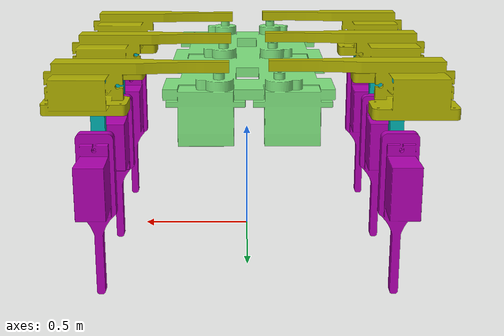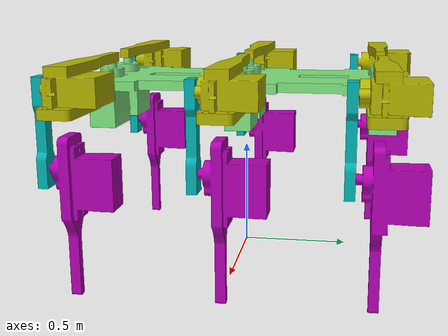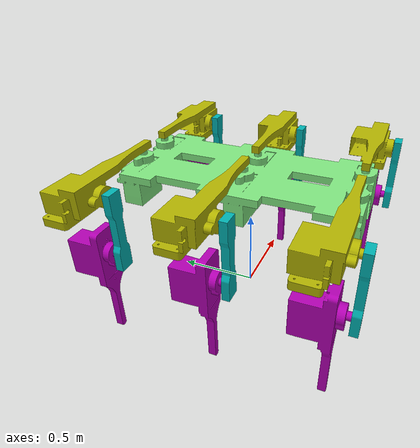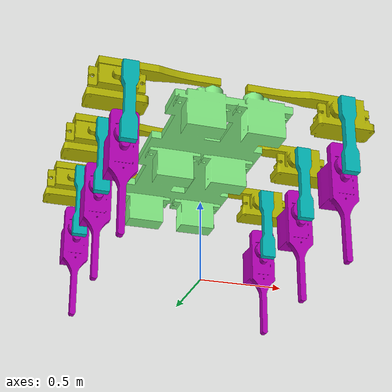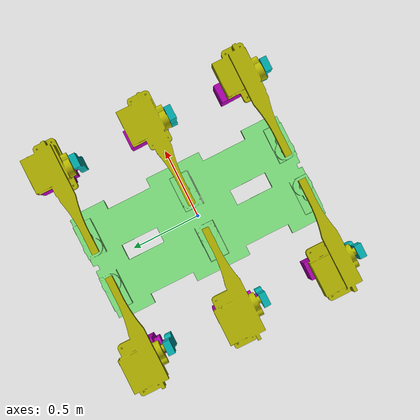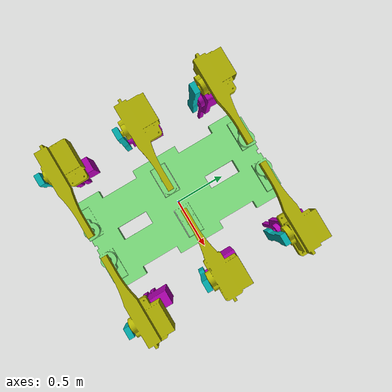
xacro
<?xml version="1.0"?>
<robot xmlns:xacro="http://ros.org/wiki/xacro" name="aranha">

<!--################### Declaração de váriaveis e constantes ################-->
<xacro:property name="pi" value="3.1415926535897931" />
<xacro:property name="altura_base" value="0.8" />
<!-- Distancia das peças -->
<xacro:property name="dist_coxa_x_d" value="0.5" />
<xacro:property name="dist_coxa_x_e" value="-0.5" />
<xacro:property name="dist_femurj_x_d" value="0.52" />
<xacro:property name="dist_femurj_x_e" value="-0.52" />

<!-- Joint properties -->
<xacro:property name="joint_lower_limit" value="-${pi/2}" />
<xacro:property name="joint_upper_limit" value="${pi/2}" />
<xacro:property name="joint_effort" value="10000" />
<xacro:property name="joint_velocity" value="100" />

<!--###################### Comunicacao com gazebo ###########################-->
<gazebo>
  <plugin name="gazebo_ros_control" filename="libgazebo_ros_control.so">
    <robotNamespace>/crab</robotNamespace> <!--Nao sei o que faz -->
  </plugin>
</gazebo>

<!--######################## Faz a Base do Robo #############################-->
<link name="base_link"/>
<joint name="base_joint" type="fixed">
  <axis xyz="0 0 1"/>
  <parent link="base_link"/>
  <child link="thorax"/>
  <origin rpy="0 0 0" xyz="0 0 0"/>
</joint>

<link name="thorax">
  <visual>
    <geometry>
      <mesh scale="0.01 0.01 0.01" filename="package://robot_description/meshes/base.stl"/>
    </geometry>
    <origin rpy="0 0 ${pi/2}" xyz="0 0 ${altura_base}"/>
    <material name="verde_limao">
      <color rgba="0.5 0.9 0.5 1"/>
    </material>
  </visual>

</link>

<!--################## Macros da Perna/Fazendo a perna em si ################-->
<xacro:macro name="leg" params="lado num x y dist_x_coxa dist_femurj_x">

  <!--Joint e Link para fixar coxa (caso contrario gira em torno do centro da base)-->
  <joint name="perna_centro_joint_${num}" type="fixed">
    <axis xyz="0 0 1"/>
    <origin xyz="${x} ${y} ${altura_base+ 0.11}" rpy="0 0 0" /> <!-- imp -->
    <parent link="thorax" />
    <child link="perna_centro_${num}" />
  </joint>

  <link name="perna_centro_${num}" >
    <inertial>
      <origin xyz="0.0 0.0 0.0" rpy="0.0 0.0 0.0" />
      <mass value="0.00001"/>
      <inertia ixx="1" ixy="0" ixz="0" iyy="1" iyz="0" izz="1" />
    </inertial>
  </link>
<!--..............Joint entre "thorax"(thorax) e coxa / Link da Coxa ..........-->
<joint name="coxa_joint_${num}" type="revolute">
  <parent link="perna_centro_${num}"/>
  <axis xyz="0 0 1" />
  <origin xyz="0 0 0" rpy="0 0 0" /> <!-- segundo-->
  <child link="coxa_${num}" />
  <limit lower="${joint_lower_limit}" upper="${joint_upper_limit}"
	 effort="${joint_effort}" velocity="${joint_velocity}" />

</joint>

<transmission name="coxa_transmission_${num}">
  <type>transmission_interface/SimpleTransmission</type>
  <joint name="coxa_joint_${num}">
    <hardwareInterface>EffortJointInterface</hardwareInterface>
  </joint>
  <actuator name="coxa_motor_${num}">
    <hardwareInterface>EffortJointInterface</hardwareInterface>
    <mechanicalReduction>1</mechanicalReduction>
  </actuator>
</transmission>

<link name="coxa_${num}">
  <visual>
    <origin xyz="0 0 ${0}" rpy="0 0 0" />
    <geometry>
      <mesh scale="0.01 0.01 0.01" filename="package://robot_description/meshes/coxa_${lado}.stl"/>
    </geometry>
    <material name="">
      <color rgba="0.7 0.7 0 1" />
    </material>
  </visual>

  <collision>
    <origin xyz="0 0 0" rpy="0 0 0" />
    <geometry>
      <mesh scale="0.01 0.01 0.01" filename="package://robot_description/meshes/coxa_${lado}.stl"/>
    </geometry>
    <material name="">
      <color rgba="0.7 0.7 0 1" />
    </material>
  </collision>

  <inertial>
    <origin xyz="0.0 0.0 0.0" rpy="0.0 0.0 0.0" />  <!--Acho que sao os valores do centro de massa/10-->
    <mass value="0.00001"/>
    <inertia ixx="1" ixy="0" ixz="0" iyy="1" iyz="0" izz="1" />

  </inertial>
</link>

<gazebo reference="coxa_${num}">
  <mu1>0.2</mu1>
  <mu2>0.2</mu2>

</gazebo>

<!--.................Joint entre coxa e femur / Link ddo
    Femur. .............-->

<joint name="femur_centro_${num}" type="fixed">
   <axis xyz="0 1 0" />
    <origin xyz="${dist_femurj_x} -0.15 -0.05" rpy=" 0 0 0" />
    <parent link="coxa_${num}" />
    <child link="femur_centro_${num}" />

  </joint>

  <link name="femur_centro_${num}" >
    <inertial>
      <origin xyz="0.0 0.0 0.0" rpy="0.0 0.0 0.0" />
      <mass value="0.00001"/>
      <inertia ixx="1" ixy="0" ixz="0" iyy="1" iyz="0" izz="1" />
    </inertial>
  </link>

<joint name="femur_joint_${num}" type="revolute">
  <origin xyz="0 0 0" rpy="0 0 0" />
  <parent link="femur_centro_${num}" />
  <child link="femur_${num}" />
  <axis xyz="0 1 0" />
  <limit lower="${joint_lower_limit}" upper="${joint_upper_limit}" effort="${joint_effort}" velocity="${joint_velocity}" />
</joint>

<transmission name="femur_transmission_${num}">
  <type>transmission_interface/SimpleTransmission</type>
  <joint name="femur_joint_${num}">
    <hardwareInterface>EffortJointInterface</hardwareInterface>
  </joint>
  <actuator name="femur_motor_${num}">
    <hardwareInterface>EffortJointInterface</hardwareInterface>
    <mechanicalReduction>1</mechanicalReduction>
  </actuator>
</transmission>

<link name="femur_${num}">
  <visual>
    <origin xyz="0 0 0" rpy="0 0 0" />
    <geometry>
      <mesh scale="0.01 0.01 0.01"  filename="package://robot_description/meshes/femur.stl" />
    </geometry>
    <material name="">
      <color rgba="0 0.7 0.7 1" />
    </material>
  </visual>

  <collision>
    <origin xyz="0 0 0" rpy="0 0 0" />
    <geometry>
      <mesh scale="0.01 0.01 0.01"  filename="package://robot_description/meshes/femur.stl" />
    </geometry>
    <material name="">
      <color rgba="0 0.7 0.7 1" />
    </material>
  </collision>

  <inertial>
    <origin xyz="0.0 0.0 0.0" rpy="0.0 0.0 0.0" />
    <mass value="0.00001"/>

    <inertia ixx="1" ixy="0" ixz="0" iyy="1" iyz="0" izz="1" />

  </inertial>
</link>

<gazebo reference="femur_${num}">
  <mu1>0.2</mu1>
  <mu2>0.2</mu2>

</gazebo>

<!--.................Joint entre femur e Tibia / Link do Tibia. .............-->

  <!--Joint e Link para fixar coxa (caso contrario gira em torno do centro da base)-->
  <joint name="tibia_centro_${num}" type="fixed">
    <axis xyz="0 1 0"/>
    <origin xyz="${0} 0.045 -0.36" rpy="0 0 0" />
    <parent link="femur_${num}" />
    <child link="tibia_centro_${num}" />

  </joint>

  <link name="tibia_centro_${num}" >
    <inertial>
      <origin xyz="0.0 0.0 0.0" rpy="0.0 0.0 0.0" />
      <mass value="0.00001"/>
      <inertia ixx="1" ixy="0" ixz="0" iyy="1" iyz="0" izz="1" />
    </inertial>
  </link>

<joint name="tibia_joint_${num}" type="revolute">
  <origin xyz="0 0 0" rpy="0 0 0" />
  <parent link="tibia_centro_${num}" />
  <child link="tibia_${num}" />
  <axis xyz="0 1 0" />
  <limit lower="${joint_lower_limit}" upper="${joint_upper_limit}" effort="${joint_effort}" velocity="${joint_velocity}" />
</joint>

<transmission name="tibia_transmission_${num}">
  <type>transmission_interface/SimpleTransmission</type>
  <joint name="tibia_joint_${num}">
    <hardwareInterface>EffortJointInterface</hardwareInterface>
  </joint>
  <actuator name="tibia_motor_${num}">
    <hardwareInterface>EffortJointInterface</hardwareInterface>
    <mechanicalReduction>1</mechanicalReduction>
  </actuator>
</transmission>

<link name="tibia_${num}">
  <visual>
    <origin xyz="-0 0 0" rpy="0 0 0 " />
    <geometry>
      <mesh scale="0.01 0.01 0.01" filename="package://robot_description/meshes/tibia.stl" />
    </geometry>
    <material name="">
      <color rgba="0.7 0 0.7 1" />
    </material>
  </visual>

  <collision>
    <origin xyz="0.0 0.0 0" rpy="0 0 0 " />
    <geometry>
      <mesh scale="0.01 0.01 0.01" filename="package://robot_description/meshes/tibia.stl" />
    </geometry>
    <material name="">
      <color rgba="0 0.7 0.7 1" />
    </material>
  </collision>

  <inertial>
    <origin xyz="0.0 0.0 0.0" rpy="0.0 0.0 0.0" />
    <mass value="0.00001"/>
    <inertia ixx="1" ixy="0" ixz="0" iyy="1" iyz="0" izz="1" />

  </inertial>
</link>

!--............................. Patas......................................-->
<joint name="tibia_foot_joint_${num}" type="fixed">
  <axis xyz = "0 0 1"/>
  <origin xyz="0 0.08 -0.57" rpy="0 0 0" />
  <parent link="tibia_${num}" />
  <child link="tibia_foot_${num}" />
</joint>

<link name="tibia_foot_${num}" >
</link>

</xacro:macro>

<!--################# Declaração da perna e suas posições ###################-->
<xacro:leg lado="e" num="1" x="${-2.3/20}" y="0.65"
	   dist_x_coxa="${dist_coxa_x_e}" dist_femurj_x="${dist_femurj_x_e}"/>

<xacro:leg lado="e" num="2" x="${-2.3/20}" y="0"
	   dist_x_coxa="${dist_coxa_x_e}" dist_femurj_x="${dist_femurj_x_e}" />

<xacro:leg lado="e" num="3" x="${-2.3/20}" y="-0.65"
	   dist_x_coxa="${dist_coxa_x_e}" dist_femurj_x="${dist_femurj_x_e}"/>

<xacro:leg lado="d" num="4" x="${2.3/20}" y="0.65"
	   dist_x_coxa="${dist_coxa_x_d}" dist_femurj_x="${dist_femurj_x_d}" />

<xacro:leg lado="d" num="5" x="${2.3/20}" y="0"
	   dist_x_coxa="${dist_coxa_x_d}" dist_femurj_x="${dist_femurj_x_d}"/>

<xacro:leg lado="d" num="6" x="${2.3/20}" y="-0.65"
	   dist_x_coxa="${dist_coxa_x_d}" dist_femurj_x="${dist_femurj_x_d}"/>

</robot>
